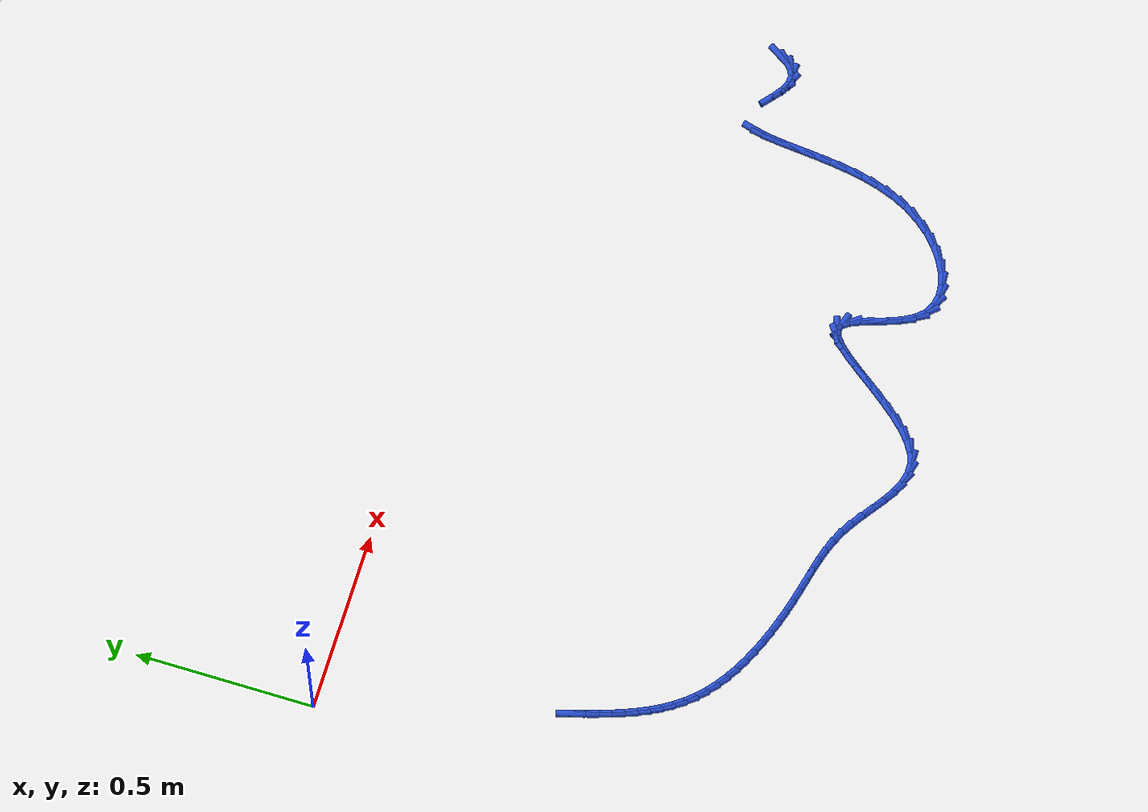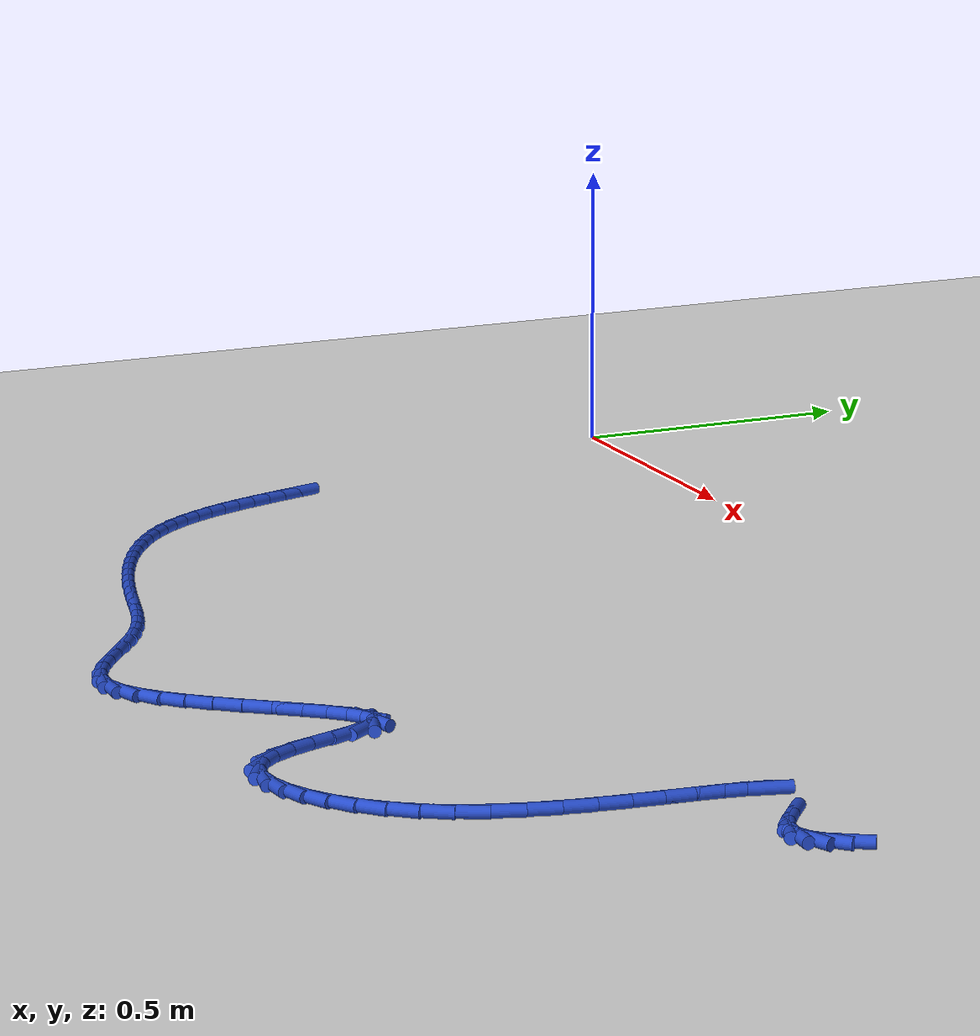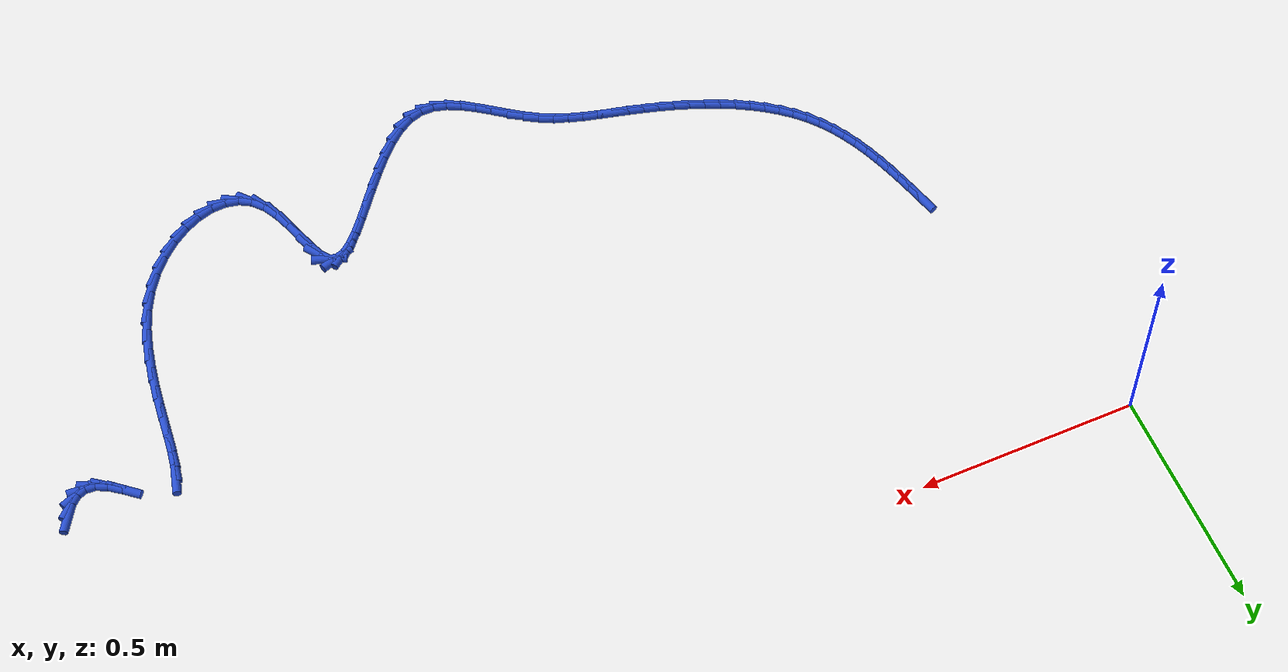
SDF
<sdf version="1.6">
 <world name="default">
  <model name="ground_plane">
   <static>1</static>
   <link name="link">
    <collision name="collision">
     <geometry><plane><normal>0 0 1</normal><size>100 100</size></plane></geometry>
     <surface><friction><ode><mu>100</mu><mu2>50</mu2></ode></friction></surface>
    </collision>
    <visual name="visual">
     <cast_shadows>0</cast_shadows>
     <geometry><plane><normal>0 0 1</normal><size>100 100</size></plane></geometry>
     <material>
      <script><uri>file://media/materials/scripts/gazebo.material</uri><name>Gazebo/WhiteGlow</name></script>
     </material>
    </visual>
   </link>
  </model>
  <model name="line">
   <link name="link_142">
    <pose>2.195262241666391 -0.6656699884543209 0.01 0 1.57 0.9996123819713505</pose>
    <collision name="collision">
     <geometry><cylinder><radius>0.01</radius><length>0.08</length></cylinder></geometry>
    </collision>
    <visual name="visual">
     <material>
      <script><name>Gazebo/Blue</name><uri>file://media/materials/scripts/gazebo.material</uri></script>
     </material>
     <geometry><cylinder><radius>0.01</radius><length>0.08</length></cylinder></geometry>
    </visual>
   </link>
   <link name="link_143">
    <pose>2.179995703602711 -0.6894259541919776 0.01 0 1.57 0.7454430825202889</pose>
    <collision name="collision">
     <geometry><cylinder><radius>0.01</radius><length>0.08</length></cylinder></geometry>
    </collision>
    <visual name="visual">
     <material>
      <script><name>Gazebo/Blue</name><uri>file://media/materials/scripts/gazebo.material</uri></script>
     </material>
     <geometry><cylinder><radius>0.01</radius><length>0.08</length></cylinder></geometry>
    </visual>
   </link>
   <link name="link_144">
    <pose>2.162425744322349 -0.7056451463262414 0.01 0 1.57 0.3678671859137303</pose>
    <collision name="collision">
     <geometry><cylinder><radius>0.01</radius><length>0.08</length></cylinder></geometry>
    </collision>
    <visual name="visual">
     <material>
      <script><name>Gazebo/Blue</name><uri>file://media/materials/scripts/gazebo.material</uri></script>
     </material>
     <geometry><cylinder><radius>0.01</radius><length>0.08</length></cylinder></geometry>
    </visual>
   </link>
   <link name="link_145">
    <pose>2.142365467658728 -0.7133766079670276 0.01 0 1.57 -0.0749435534714723</pose>
    <collision name="collision">
     <geometry><cylinder><radius>0.01</radius><length>0.08</length></cylinder></geometry>
    </collision>
    <visual name="visual">
     <material>
      <script><name>Gazebo/Blue</name><uri>file://media/materials/scripts/gazebo.material</uri></script>
     </material>
     <geometry><cylinder><radius>0.01</radius><length>0.08</length></cylinder></geometry>
    </visual>
   </link>
   <link name="link_146">
    <pose>2.119627977445271 -0.7116693822242518 0.01 0 1.57 -0.4410867007547526</pose>
    <collision name="collision">
     <geometry><cylinder><radius>0.01</radius><length>0.08</length></cylinder></geometry>
    </collision>
    <visual name="visual">
     <material>
      <script><name>Gazebo/Blue</name><uri>file://media/materials/scripts/gazebo.material</uri></script>
     </material>
     <geometry><cylinder><radius>0.01</radius><length>0.08</length></cylinder></geometry>
    </visual>
   </link>
   <link name="link_147">
    <pose>2.094030464380516 -0.6995845721171847 0.01 0 1.57 -0.6470558447896223</pose>
    <collision name="collision">
     <geometry><cylinder><radius>0.01</radius><length>0.08</length></cylinder></geometry>
    </collision>
    <visual name="visual">
     <material>
      <script><name>Gazebo/Blue</name><uri>file://media/materials/scripts/gazebo.material</uri></script>
     </material>
     <geometry><cylinder><radius>0.01</radius><length>0.08</length></cylinder></geometry>
    </visual>
   </link>
   <link name="link_148">
    <pose>2.0661925195732187 -0.6785510799303778 0.01 0 1.57 -0.7006280040195979</pose>
    <collision name="collision">
     <geometry><cylinder><radius>0.01</radius><length>0.08</length></cylinder></geometry>
    </collision>
    <visual name="visual">
     <material>
      <script><name>Gazebo/Blue</name><uri>file://media/materials/scripts/gazebo.material</uri></script>
     </material>
     <geometry><cylinder><radius>0.01</radius><length>0.08</length></cylinder></geometry>
    </visual>
   </link>
   <link name="link_154">
    <pose>1.9552277004159735 -0.6623988405944582 0.01 0 1.57 1.3088488796414934</pose>
    <collision name="collision">
     <geometry><cylinder><radius>0.01</radius><length>0.08</length></cylinder></geometry>
    </collision>
    <visual name="visual">
     <material>
      <script><name>Gazebo/Blue</name><uri>file://media/materials/scripts/gazebo.material</uri></script>
     </material>
     <geometry><cylinder><radius>0.01</radius><length>0.08</length></cylinder></geometry>
    </visual>
   </link>
   <link name="link_155">
    <pose>1.9479905218705675 -0.689392371416023 0.01 0 1.57 1.4017701582260922</pose>
    <collision name="collision">
     <geometry><cylinder><radius>0.01</radius><length>0.08</length></cylinder></geometry>
    </collision>
    <visual name="visual">
     <material>
      <script><name>Gazebo/Blue</name><uri>file://media/materials/scripts/gazebo.material</uri></script>
     </material>
     <geometry><cylinder><radius>0.01</radius><length>0.08</length></cylinder></geometry>
    </visual>
   </link>
   <link name="link_156">
    <pose>1.9423285092088052 -0.7225705992934606 0.01 0 1.57 1.447064710460334</pose>
    <collision name="collision">
     <geometry><cylinder><radius>0.01</radius><length>0.08</length></cylinder></geometry>
    </collision>
    <visual name="visual">
     <material>
      <script><name>Gazebo/Blue</name><uri>file://media/materials/scripts/gazebo.material</uri></script>
     </material>
     <geometry><cylinder><radius>0.01</radius><length>0.08</length></cylinder></geometry>
    </visual>
   </link>
   <link name="link_157">
    <pose>1.937560791746576 -0.7609064931956615 0.01 0 1.57 1.4639603687491611</pose>
    <collision name="collision">
     <geometry><cylinder><radius>0.01</radius><length>0.08</length></cylinder></geometry>
    </collision>
    <visual name="visual">
     <material>
      <script><name>Gazebo/Blue</name><uri>file://media/materials/scripts/gazebo.material</uri></script>
     </material>
     <geometry><cylinder><radius>0.01</radius><length>0.08</length></cylinder></geometry>
    </visual>
   </link>
   <link name="link_158">
    <pose>1.9330064987997695 -0.8033730220915163 0.01 0 1.57 1.4610411363811038</pose>
    <collision name="collision">
     <geometry><cylinder><radius>0.01</radius><length>0.08</length></cylinder></geometry>
    </collision>
    <visual name="visual">
     <material>
      <script><name>Gazebo/Blue</name><uri>file://media/materials/scripts/gazebo.material</uri></script>
     </material>
     <geometry><cylinder><radius>0.01</radius><length>0.08</length></cylinder></geometry>
    </visual>
   </link>
   <link name="link_159">
    <pose>1.927984759684274 -0.8489431549499152 0.01 0 1.57 1.4420170166739577</pose>
    <collision name="collision">
     <geometry><cylinder><radius>0.01</radius><length>0.08</length></cylinder></geometry>
    </collision>
    <visual name="visual">
     <material>
      <script><name>Gazebo/Blue</name><uri>file://media/materials/scripts/gazebo.material</uri></script>
     </material>
     <geometry><cylinder><radius>0.01</radius><length>0.08</length></cylinder></geometry>
    </visual>
   </link>
   <link name="link_160">
    <pose>1.9218147037159796 -0.8965898607397488 0.01 0 1.57 1.4079822253702163</pose>
    <collision name="collision">
     <geometry><cylinder><radius>0.01</radius><length>0.08</length></cylinder></geometry>
    </collision>
    <visual name="visual">
     <material>
      <script><name>Gazebo/Blue</name><uri>file://media/materials/scripts/gazebo.material</uri></script>
     </material>
     <geometry><cylinder><radius>0.01</radius><length>0.08</length></cylinder></geometry>
    </visual>
   </link>
   <link name="link_161">
    <pose>1.9138154602107742 -0.9452861084299073 0.01 0 1.57 1.3583381381681738</pose>
    <collision name="collision">
     <geometry><cylinder><radius>0.01</radius><length>0.08</length></cylinder></geometry>
    </collision>
    <visual name="visual">
     <material>
      <script><name>Gazebo/Blue</name><uri>file://media/materials/scripts/gazebo.material</uri></script>
     </material>
     <geometry><cylinder><radius>0.01</radius><length>0.08</length></cylinder></geometry>
    </visual>
   </link>
   <link name="link_162">
    <pose>1.9033061584845474 -0.9940048669892813 0.01 0 1.57 1.291187489084779</pose>
    <collision name="collision">
     <geometry><cylinder><radius>0.01</radius><length>0.08</length></cylinder></geometry>
    </collision>
    <visual name="visual">
     <material>
      <script><name>Gazebo/Blue</name><uri>file://media/materials/scripts/gazebo.material</uri></script>
     </material>
     <geometry><cylinder><radius>0.01</radius><length>0.08</length></cylinder></geometry>
    </visual>
   </link>
   <link name="link_163">
    <pose>1.8896059278531885 -1.0417191053867612 0.01 0 1.57 1.2035888188326258</pose>
    <collision name="collision">
     <geometry><cylinder><radius>0.01</radius><length>0.08</length></cylinder></geometry>
    </collision>
    <visual name="visual">
     <material>
      <script><name>Gazebo/Blue</name><uri>file://media/materials/scripts/gazebo.material</uri></script>
     </material>
     <geometry><cylinder><radius>0.01</radius><length>0.08</length></cylinder></geometry>
    </visual>
   </link>
   <link name="link_164">
    <pose>1.8720338976325857 -1.087401792591237 0.01 0 1.57 1.0921266399633214</pose>
    <collision name="collision">
     <geometry><cylinder><radius>0.01</radius><length>0.08</length></cylinder></geometry>
    </collision>
    <visual name="visual">
     <material>
      <script><name>Gazebo/Blue</name><uri>file://media/materials/scripts/gazebo.material</uri></script>
     </material>
     <geometry><cylinder><radius>0.01</radius><length>0.08</length></cylinder></geometry>
    </visual>
   </link>
   <link name="link_165">
    <pose>1.8499146860136546 -1.1300271743690185 0.01 0 1.57 0.9652367267636451</pose>
    <collision name="collision">
     <geometry><cylinder><radius>0.01</radius><length>0.08</length></cylinder></geometry>
    </collision>
    <visual name="visual">
     <material>
      <script><name>Gazebo/Blue</name><uri>file://media/materials/scripts/gazebo.material</uri></script>
     </material>
     <geometry><cylinder><radius>0.01</radius><length>0.08</length></cylinder></geometry>
    </visual>
   </link>
   <link name="link_166">
    <pose>1.8231394492648134 -1.1687012820256109 0.01 0 1.57 0.8408640565196475</pose>
    <collision name="collision">
     <geometry><cylinder><radius>0.01</radius><length>0.08</length></cylinder></geometry>
    </collision>
    <visual name="visual">
     <material>
      <script><name>Gazebo/Blue</name><uri>file://media/materials/scripts/gazebo.material</uri></script>
     </material>
     <geometry><cylinder><radius>0.01</radius><length>0.08</length></cylinder></geometry>
    </visual>
   </link>
   <link name="link_167">
    <pose>1.7926506985768051 -1.2027747083193658 0.01 0 1.57 0.7162195679848984</pose>
    <collision name="collision">
     <geometry><cylinder><radius>0.01</radius><length>0.08</length></cylinder></geometry>
    </collision>
    <visual name="visual">
     <material>
      <script><name>Gazebo/Blue</name><uri>file://media/materials/scripts/gazebo.material</uri></script>
     </material>
     <geometry><cylinder><radius>0.01</radius><length>0.08</length></cylinder></geometry>
    </visual>
   </link>
   <link name="link_168">
    <pose>1.7595051772235553 -1.2316246181619868 0.01 0 1.57 0.5848049936562314</pose>
    <collision name="collision">
     <geometry><cylinder><radius>0.01</radius><length>0.08</length></cylinder></geometry>
    </collision>
    <visual name="visual">
     <material>
      <script><name>Gazebo/Blue</name><uri>file://media/materials/scripts/gazebo.material</uri></script>
     </material>
     <geometry><cylinder><radius>0.01</radius><length>0.08</length></cylinder></geometry>
    </visual>
   </link>
   <link name="link_169">
    <pose>1.7247596284789877 -1.2546281764651772 0.01 0 1.57 0.43816767409070534</pose>
    <collision name="collision">
     <geometry><cylinder><radius>0.01</radius><length>0.08</length></cylinder></geometry>
    </collision>
    <visual name="visual">
     <material>
      <script><name>Gazebo/Blue</name><uri>file://media/materials/scripts/gazebo.material</uri></script>
     </material>
     <geometry><cylinder><radius>0.01</radius><length>0.08</length></cylinder></geometry>
    </visual>
   </link>
   <link name="link_170">
    <pose>1.6894707956170278 -1.2711625481406417 0.01 0 1.57 0.26513177540556665</pose>
    <collision name="collision">
     <geometry><cylinder><radius>0.01</radius><length>0.08</length></cylinder></geometry>
    </collision>
    <visual name="visual">
     <material>
      <script><name>Gazebo/Blue</name><uri>file://media/materials/scripts/gazebo.material</uri></script>
     </material>
     <geometry><cylinder><radius>0.01</radius><length>0.08</length></cylinder></geometry>
    </visual>
   </link>
   <link name="link_171">
    <pose>1.6546954219115992 -1.280604898100083 0.01 0 1.57 0.05197796249428365</pose>
    <collision name="collision">
     <geometry><cylinder><radius>0.01</radius><length>0.08</length></cylinder></geometry>
    </collision>
    <visual name="visual">
     <material>
      <script><name>Gazebo/Blue</name><uri>file://media/materials/scripts/gazebo.material</uri></script>
     </material>
     <geometry><cylinder><radius>0.01</radius><length>0.08</length></cylinder></geometry>
    </visual>
   </link>
   <link name="link_172">
    <pose>1.6214902506366276 -1.282332391255206 0.01 0 1.57 -0.21289743742709383</pose>
    <collision name="collision">
     <geometry><cylinder><radius>0.01</radius><length>0.08</length></cylinder></geometry>
    </collision>
    <visual name="visual">
     <material>
      <script><name>Gazebo/Blue</name><uri>file://media/materials/scripts/gazebo.material</uri></script>
     </material>
     <geometry><cylinder><radius>0.01</radius><length>0.08</length></cylinder></geometry>
    </visual>
   </link>
   <link name="link_173">
    <pose>1.5909120250660376 -1.2757221925177133 0.01 0 1.57 -0.5248014675047328</pose>
    <collision name="collision">
     <geometry><cylinder><radius>0.01</radius><length>0.08</length></cylinder></geometry>
    </collision>
    <visual name="visual">
     <material>
      <script><name>Gazebo/Blue</name><uri>file://media/materials/scripts/gazebo.material</uri></script>
     </material>
     <geometry><cylinder><radius>0.01</radius><length>0.08</length></cylinder></geometry>
    </visual>
   </link>
   <link name="link_174">
    <pose>1.5640174884737532 -1.2601514667993101 0.01 0 1.57 -0.8437431753034583</pose>
    <collision name="collision">
     <geometry><cylinder><radius>0.01</radius><length>0.08</length></cylinder></geometry>
    </collision>
    <visual name="visual">
     <material>
      <script><name>Gazebo/Blue</name><uri>file://media/materials/scripts/gazebo.material</uri></script>
     </material>
     <geometry><cylinder><radius>0.01</radius><length>0.08</length></cylinder></geometry>
    </visual>
   </link>
   <link name="link_175">
    <pose>1.5417789115439335 -1.235153756597987 0.01 0 1.57 -1.0707091853753874</pose>
    <collision name="collision">
     <geometry><cylinder><radius>0.01</radius><length>0.08</length></cylinder></geometry>
    </collision>
    <visual name="visual">
     <material>
      <script><name>Gazebo/Blue</name><uri>file://media/materials/scripts/gazebo.material</uri></script>
     </material>
     <geometry><cylinder><radius>0.01</radius><length>0.08</length></cylinder></geometry>
    </visual>
   </link>
   <link name="link_176">
    <pose>1.5239482420625912 -1.2025216940150176 0.01 0 1.57 -1.1931452383965138</pose>
    <collision name="collision">
     <geometry><cylinder><radius>0.01</radius><length>0.08</length></cylinder></geometry>
    </collision>
    <visual name="visual">
     <material>
      <script><name>Gazebo/Blue</name><uri>file://media/materials/scripts/gazebo.material</uri></script>
     </material>
     <geometry><cylinder><radius>0.01</radius><length>0.08</length></cylinder></geometry>
    </visual>
   </link>
   <link name="link_177">
    <pose>1.509359850531284 -1.1657465511646319 0.01 0 1.57 -1.2473068338839473</pose>
    <collision name="collision">
     <geometry><cylinder><radius>0.01</radius><length>0.08</length></cylinder></geometry>
    </collision>
    <visual name="visual">
     <material>
      <script><name>Gazebo/Blue</name><uri>file://media/materials/scripts/gazebo.material</uri></script>
     </material>
     <geometry><cylinder><radius>0.01</radius><length>0.08</length></cylinder></geometry>
    </visual>
   </link>
   <link name="link_178">
    <pose>1.4968257313512998 -1.1283610233086216 0.01 0 1.57 -1.2443495493322714</pose>
    <collision name="collision">
     <geometry><cylinder><radius>0.01</radius><length>0.08</length></cylinder></geometry>
    </collision>
    <visual name="visual">
     <material>
      <script><name>Gazebo/Blue</name><uri>file://media/materials/scripts/gazebo.material</uri></script>
     </material>
     <geometry><cylinder><radius>0.01</radius><length>0.08</length></cylinder></geometry>
    </visual>
   </link>
   <link name="link_179">
    <pose>1.4851578789239266 -1.093897805708778 0.01 0 1.57 -1.1663247400436214</pose>
    <collision name="collision">
     <geometry><cylinder><radius>0.01</radius><length>0.08</length></cylinder></geometry>
    </collision>
    <visual name="visual">
     <material>
      <script><name>Gazebo/Blue</name><uri>file://media/materials/scripts/gazebo.material</uri></script>
     </material>
     <geometry><cylinder><radius>0.01</radius><length>0.08</length></cylinder></geometry>
    </visual>
   </link>
   <link name="link_180">
    <pose>1.4731682876504542 -1.0658895936268935 0.01 0 1.57 -0.9278674675725941</pose>
    <collision name="collision">
     <geometry><cylinder><radius>0.01</radius><length>0.08</length></cylinder></geometry>
    </collision>
    <visual name="visual">
     <material>
      <script><name>Gazebo/Blue</name><uri>file://media/materials/scripts/gazebo.material</uri></script>
     </material>
     <geometry><cylinder><radius>0.01</radius><length>0.08</length></cylinder></geometry>
    </visual>
   </link>
   <link name="link_181">
    <pose>1.4596689669649754 -1.0478690247130005 0.01 0 1.57 -0.3329556566196396</pose>
    <collision name="collision">
     <geometry><cylinder><radius>0.01</radius><length>0.08</length></cylinder></geometry>
    </collision>
    <visual name="visual">
     <material>
      <script><name>Gazebo/Blue</name><uri>file://media/materials/scripts/gazebo.material</uri></script>
     </material>
     <geometry><cylinder><radius>0.01</radius><length>0.08</length></cylinder></geometry>
    </visual>
   </link>
   <link name="link_182">
    <pose>1.4437354695453442 -1.0423587329779336 0.01 0 1.57 0.3129008909267098</pose>
    <collision name="collision">
     <geometry><cylinder><radius>0.01</radius><length>0.08</length></cylinder></geometry>
    </collision>
    <visual name="visual">
     <material>
      <script><name>Gazebo/Blue</name><uri>file://media/materials/scripts/gazebo.material</uri></script>
     </material>
     <geometry><cylinder><radius>0.01</radius><length>0.08</length></cylinder></geometry>
    </visual>
   </link>
   <link name="link_183">
    <pose>1.4253784226685473 -1.0482977707228056 0.01 0 1.57 0.6469466118176089</pose>
    <collision name="collision">
     <geometry><cylinder><radius>0.01</radius><length>0.08</length></cylinder></geometry>
    </collision>
    <visual name="visual">
     <material>
      <script><name>Gazebo/Blue</name><uri>file://media/materials/scripts/gazebo.material</uri></script>
     </material>
     <geometry><cylinder><radius>0.01</radius><length>0.08</length></cylinder></geometry>
    </visual>
   </link>
   <link name="link_184">
    <pose>1.4048157446448821 -1.0638307676900938 0.01 0 1.57 0.8011359289901847</pose>
    <collision name="collision">
     <geometry><cylinder><radius>0.01</radius><length>0.08</length></cylinder></geometry>
    </collision>
    <visual name="visual">
     <material>
      <script><name>Gazebo/Blue</name><uri>file://media/materials/scripts/gazebo.material</uri></script>
     </material>
     <geometry><cylinder><radius>0.01</radius><length>0.08</length></cylinder></geometry>
    </visual>
   </link>
   <link name="link_185">
    <pose>1.3822653537846459 -1.087102353622276 0.01 0 1.57 0.8755620156915359</pose>
    <collision name="collision">
     <geometry><cylinder><radius>0.01</radius><length>0.08</length></cylinder></geometry>
    </collision>
    <visual name="visual">
     <material>
      <script><name>Gazebo/Blue</name><uri>file://media/materials/scripts/gazebo.material</uri></script>
     </material>
     <geometry><cylinder><radius>0.01</radius><length>0.08</length></cylinder></geometry>
    </visual>
   </link>
   <link name="link_186">
    <pose>1.357945168398136 -1.1162571582618293 0.01 0 1.57 0.9085650713628531</pose>
    <collision name="collision">
     <geometry><cylinder><radius>0.01</radius><length>0.08</length></cylinder></geometry>
    </collision>
    <visual name="visual">
     <material>
      <script><name>Gazebo/Blue</name><uri>file://media/materials/scripts/gazebo.material</uri></script>
     </material>
     <geometry><cylinder><radius>0.01</radius><length>0.08</length></cylinder></geometry>
    </visual>
   </link>
   <link name="link_187">
    <pose>1.3320731067956495 -1.1494398113512314 0.01 0 1.57 0.9149272075986344</pose>
    <collision name="collision">
     <geometry><cylinder><radius>0.01</radius><length>0.08</length></cylinder></geometry>
    </collision>
    <visual name="visual">
     <material>
      <script><name>Gazebo/Blue</name><uri>file://media/materials/scripts/gazebo.material</uri></script>
     </material>
     <geometry><cylinder><radius>0.01</radius><length>0.08</length></cylinder></geometry>
    </visual>
   </link>
   <link name="link_188">
    <pose>1.304867087287484 -1.1847949426329605 0.01 0 1.57 0.8997538537263806</pose>
    <collision name="collision">
     <geometry><cylinder><radius>0.01</radius><length>0.08</length></cylinder></geometry>
    </collision>
    <visual name="visual">
     <material>
      <script><name>Gazebo/Blue</name><uri>file://media/materials/scripts/gazebo.material</uri></script>
     </material>
     <geometry><cylinder><radius>0.01</radius><length>0.08</length></cylinder></geometry>
    </visual>
   </link>
   <link name="link_189">
    <pose>1.2765450281839368 -1.2204671818494937 0.01 0 1.57 0.8628039543716065</pose>
    <collision name="collision">
     <geometry><cylinder><radius>0.01</radius><length>0.08</length></cylinder></geometry>
    </collision>
    <visual name="visual">
     <material>
      <script><name>Gazebo/Blue</name><uri>file://media/materials/scripts/gazebo.material</uri></script>
     </material>
     <geometry><cylinder><radius>0.01</radius><length>0.08</length></cylinder></geometry>
    </visual>
   </link>
   <link name="link_190">
    <pose>1.2473248477953054 -1.2546011587433088 0.01 0 1.57 0.7992487102097757</pose>
    <collision name="collision">
     <geometry><cylinder><radius>0.01</radius><length>0.08</length></cylinder></geometry>
    </collision>
    <visual name="visual">
     <material>
      <script><name>Gazebo/Blue</name><uri>file://media/materials/scripts/gazebo.material</uri></script>
     </material>
     <geometry><cylinder><radius>0.01</radius><length>0.08</length></cylinder></geometry>
    </visual>
   </link>
   <link name="link_191">
    <pose>1.2174244644318863 -1.2853415030568827 0.01 0 1.57 0.6984029523716959</pose>
    <collision name="collision">
     <geometry><cylinder><radius>0.01</radius><length>0.08</length></cylinder></geometry>
    </collision>
    <visual name="visual">
     <material>
      <script><name>Gazebo/Blue</name><uri>file://media/materials/scripts/gazebo.material</uri></script>
     </material>
     <geometry><cylinder><radius>0.01</radius><length>0.08</length></cylinder></geometry>
    </visual>
   </link>
   <link name="link_192">
    <pose>1.1870617964039778 -1.3108328445326936 0.01 0 1.57 0.5409658061694312</pose>
    <collision name="collision">
     <geometry><cylinder><radius>0.01</radius><length>0.08</length></cylinder></geometry>
    </collision>
    <visual name="visual">
     <material>
      <script><name>Gazebo/Blue</name><uri>file://media/materials/scripts/gazebo.material</uri></script>
     </material>
     <geometry><cylinder><radius>0.01</radius><length>0.08</length></cylinder></geometry>
    </visual>
   </link>
   <link name="link_193">
    <pose>1.156454762021877 -1.3292198129132191 0.01 0 1.57 0.2988439352659974</pose>
    <collision name="collision">
     <geometry><cylinder><radius>0.01</radius><length>0.08</length></cylinder></geometry>
    </collision>
    <visual name="visual">
     <material>
      <script><name>Gazebo/Blue</name><uri>file://media/materials/scripts/gazebo.material</uri></script>
     </material>
     <geometry><cylinder><radius>0.01</radius><length>0.08</length></cylinder></geometry>
    </visual>
   </link>
   <link name="link_194">
    <pose>1.1258205176257567 -1.3386573050301476 0.01 0 1.57 -0.006158942326616484</pose>
    <collision name="collision">
     <geometry><cylinder><radius>0.01</radius><length>0.08</length></cylinder></geometry>
    </collision>
    <visual name="visual">
     <material>
      <script><name>Gazebo/Blue</name><uri>file://media/materials/scripts/gazebo.material</uri></script>
     </material>
     <geometry><cylinder><radius>0.01</radius><length>0.08</length></cylinder></geometry>
    </visual>
   </link>
   <link name="link_195">
    <pose>1.095289459030233 -1.3384692636234499 0.01 0 1.57 -0.2647061144779179</pose>
    <collision name="collision">
     <geometry><cylinder><radius>0.01</radius><length>0.08</length></cylinder></geometry>
    </collision>
    <visual name="visual">
     <material>
      <script><name>Gazebo/Blue</name><uri>file://media/materials/scripts/gazebo.material</uri></script>
     </material>
     <geometry><cylinder><radius>0.01</radius><length>0.08</length></cylinder></geometry>
    </visual>
   </link>
   <link name="link_196">
    <pose>1.064826328550952 -1.3302117127156643 0.01 0 1.57 -0.4449622292759995</pose>
    <collision name="collision">
     <geometry><cylinder><radius>0.01</radius><length>0.08</length></cylinder></geometry>
    </collision>
    <visual name="visual">
     <material>
      <script><name>Gazebo/Blue</name><uri>file://media/materials/scripts/gazebo.material</uri></script>
     </material>
     <geometry><cylinder><radius>0.01</radius><length>0.08</length></cylinder></geometry>
    </visual>
   </link>
   <link name="link_197">
    <pose>1.0343772275619885 -1.3156918518072382 0.01 0 1.57 -0.5566952301761783</pose>
    <collision name="collision">
     <geometry><cylinder><radius>0.01</radius><length>0.08</length></cylinder></geometry>
    </collision>
    <visual name="visual">
     <material>
      <script><name>Gazebo/Blue</name><uri>file://media/materials/scripts/gazebo.material</uri></script>
     </material>
     <geometry><cylinder><radius>0.01</radius><length>0.08</length></cylinder></geometry>
    </visual>
   </link>
   <link name="link_198">
    <pose>1.003888257437418 -1.2967168803986198 0.01 0 1.57 -0.6154278487967002</pose>
    <collision name="collision">
     <geometry><cylinder><radius>0.01</radius><length>0.08</length></cylinder></geometry>
    </collision>
    <visual name="visual">
     <material>
      <script><name>Gazebo/Blue</name><uri>file://media/materials/scripts/gazebo.material</uri></script>
     </material>
     <geometry><cylinder><radius>0.01</radius><length>0.08</length></cylinder></geometry>
    </visual>
   </link>
   <link name="link_199">
    <pose>0.9733055195513147 -1.2750939979902565 0.01 0 1.57 -0.631222771851358</pose>
    <collision name="collision">
     <geometry><cylinder><radius>0.01</radius><length>0.08</length></cylinder></geometry>
    </collision>
    <visual name="visual">
     <material>
      <script><name>Gazebo/Blue</name><uri>file://media/materials/scripts/gazebo.material</uri></script>
     </material>
     <geometry><cylinder><radius>0.01</radius><length>0.08</length></cylinder></geometry>
    </visual>
   </link>
   <link name="link_200">
    <pose>0.9425751152777542 -1.2526304040825962 0.01 0 1.57 -0.6073490136458245</pose>
    <collision name="collision">
     <geometry><cylinder><radius>0.01</radius><length>0.08</length></cylinder></geometry>
    </collision>
    <visual name="visual">
     <material>
      <script><name>Gazebo/Blue</name><uri>file://media/materials/scripts/gazebo.material</uri></script>
     </material>
     <geometry><cylinder><radius>0.01</radius><length>0.08</length></cylinder></geometry>
    </visual>
   </link>
   <link name="link_201">
    <pose>0.9116431459908113 -1.231133298176087 0.01 0 1.57 -0.5413512757010174</pose>
    <collision name="collision">
     <geometry><cylinder><radius>0.01</radius><length>0.08</length></cylinder></geometry>
    </collision>
    <visual name="visual">
     <material>
      <script><name>Gazebo/Blue</name><uri>file://media/materials/scripts/gazebo.material</uri></script>
     </material>
     <geometry><cylinder><radius>0.01</radius><length>0.08</length></cylinder></geometry>
    </visual>
   </link>
   <link name="link_202">
    <pose>0.8804561146817279 -1.2123815366112491 0.01 0 1.57 -0.4520830624222318</pose>
    <collision name="collision">
     <geometry><cylinder><radius>0.01</radius><length>0.08</length></cylinder></geometry>
    </collision>
    <visual name="visual">
     <material>
      <script><name>Gazebo/Blue</name><uri>file://media/materials/scripts/gazebo.material</uri></script>
     </material>
     <geometry><cylinder><radius>0.01</radius><length>0.08</length></cylinder></geometry>
    </visual>
   </link>
   <link name="link_203">
    <pose>0.848975547819843 -1.1970937301087032 0.01 0 1.57 -0.3734800362205828</pose>
    <collision name="collision">
     <geometry><cylinder><radius>0.01</radius><length>0.08</length></cylinder></geometry>
    </collision>
    <visual name="visual">
     <material>
      <script><name>Gazebo/Blue</name><uri>file://media/materials/scripts/gazebo.material</uri></script>
     </material>
     <geometry><cylinder><radius>0.01</radius><length>0.08</length></cylinder></geometry>
    </visual>
   </link>
   <link name="link_204">
    <pose>0.8171821536183018 -1.184634784226786 0.01 0 1.57 -0.31177845962542</pose>
    <collision name="collision">
     <geometry><cylinder><radius>0.01</radius><length>0.08</length></cylinder></geometry>
    </collision>
    <visual name="visual">
     <material>
      <script><name>Gazebo/Blue</name><uri>file://media/materials/scripts/gazebo.material</uri></script>
     </material>
     <geometry><cylinder><radius>0.01</radius><length>0.08</length></cylinder></geometry>
    </visual>
   </link>
   <link name="link_205">
    <pose>0.7850578891567792 -1.1742814687901153 0.01 0 1.57 -0.2695336719085614</pose>
    <collision name="collision">
     <geometry><cylinder><radius>0.01</radius><length>0.08</length></cylinder></geometry>
    </collision>
    <visual name="visual">
     <material>
      <script><name>Gazebo/Blue</name><uri>file://media/materials/scripts/gazebo.material</uri></script>
     </material>
     <geometry><cylinder><radius>0.01</radius><length>0.08</length></cylinder></geometry>
    </visual>
   </link>
   <link name="link_206">
    <pose>0.7525847115149478 -1.165310553623306 0.01 0 1.57 -0.24789152025265265</pose>
    <collision name="collision">
     <geometry><cylinder><radius>0.01</radius><length>0.08</length></cylinder></geometry>
    </collision>
    <visual name="visual">
     <material>
      <script><name>Gazebo/Blue</name><uri>file://media/materials/scripts/gazebo.material</uri></script>
     </material>
     <geometry><cylinder><radius>0.01</radius><length>0.08</length></cylinder></geometry>
    </visual>
   </link>
   <link name="link_207">
    <pose>0.719744577772481 -1.1569988085509746 0.01 0 1.57 -0.24694705711152445</pose>
    <collision name="collision">
     <geometry><cylinder><radius>0.01</radius><length>0.08</length></cylinder></geometry>
    </collision>
    <visual name="visual">
     <material>
      <script><name>Gazebo/Blue</name><uri>file://media/materials/scripts/gazebo.material</uri></script>
     </material>
     <geometry><cylinder><radius>0.01</radius><length>0.08</length></cylinder></geometry>
    </visual>
   </link>
   <link name="link_208">
    <pose>0.6865194450090525 -1.148623003397737 0.01 0 1.57 -0.26347444160733596</pose>
    <collision name="collision">
     <geometry><cylinder><radius>0.01</radius><length>0.08</length></cylinder></geometry>
    </collision>
    <visual name="visual">
     <material>
      <script><name>Gazebo/Blue</name><uri>file://media/materials/scripts/gazebo.material</uri></script>
     </material>
     <geometry><cylinder><radius>0.01</radius><length>0.08</length></cylinder></geometry>
    </visual>
   </link>
   <link name="link_209">
    <pose>0.6529295453702322 -1.1395622852540201 0.01 0 1.57 -0.28617714956694534</pose>
    <collision name="collision">
     <geometry><cylinder><radius>0.01</radius><length>0.08</length></cylinder></geometry>
    </collision>
    <visual name="visual">
     <material>
      <script><name>Gazebo/Blue</name><uri>file://media/materials/scripts/gazebo.material</uri></script>
     </material>
     <geometry><cylinder><radius>0.01</radius><length>0.08</length></cylinder></geometry>
    </visual>
   </link>
   <link name="link_210">
    <pose>0.6191552157680055 -1.129624045756548 0.01 0 1.57 -0.3124085138146949</pose>
    <collision name="collision">
     <geometry><cylinder><radius>0.01</radius><length>0.08</length></cylinder></geometry>
    </collision>
    <visual name="visual">
     <material>
      <script><name>Gazebo/Blue</name><uri>file://media/materials/scripts/gazebo.material</uri></script>
     </material>
     <geometry><cylinder><radius>0.01</radius><length>0.08</length></cylinder></geometry>
    </visual>
   </link>
   <link name="link_211">
    <pose>0.5854186498101001 -1.118727633868976 0.01 0 1.57 -0.34247552719867674</pose>
    <collision name="collision">
     <geometry><cylinder><radius>0.01</radius><length>0.08</length></cylinder></geometry>
    </collision>
    <visual name="visual">
     <material>
      <script><name>Gazebo/Blue</name><uri>file://media/materials/scripts/gazebo.material</uri></script>
     </material>
     <geometry><cylinder><radius>0.01</radius><length>0.08</length></cylinder></geometry>
    </visual>
   </link>
   <link name="link_212">
    <pose>0.5519420412369556 -1.1067923989099335 0.01 0 1.57 -0.37676259643208326</pose>
    <collision name="collision">
     <geometry><cylinder><radius>0.01</radius><length>0.08</length></cylinder></geometry>
    </collision>
    <visual name="visual">
     <material>
      <script><name>Gazebo/Blue</name><uri>file://media/materials/scripts/gazebo.material</uri></script>
     </material>
     <geometry><cylinder><radius>0.01</radius><length>0.08</length></cylinder></geometry>
    </visual>
   </link>
   <link name="link_213">
    <pose>0.5189475837890104 -1.093737690198049 0.01 0 1.57 -0.41573044425696026</pose>
    <collision name="collision">
     <geometry><cylinder><radius>0.01</radius><length>0.08</length></cylinder></geometry>
    </collision>
    <visual name="visual">
     <material>
      <script><name>Gazebo/Blue</name><uri>file://media/materials/scripts/gazebo.material</uri></script>
     </material>
     <geometry><cylinder><radius>0.01</radius><length>0.08</length></cylinder></geometry>
    </visual>
   </link>
   <link name="link_214">
    <pose>0.48665747120670394 -1.0794828570519521 0.01 0 1.57 -0.4599120378669697</pose>
    <collision name="collision">
     <geometry><cylinder><radius>0.01</radius><length>0.08</length></cylinder></geometry>
    </collision>
    <visual name="visual">
     <material>
      <script><name>Gazebo/Blue</name><uri>file://media/materials/scripts/gazebo.material</uri></script>
     </material>
     <geometry><cylinder><radius>0.01</radius><length>0.08</length></cylinder></geometry>
    </visual>
   </link>
   <link name="link_215">
    <pose>0.45529389723047525 -1.0639472487902724 0.01 0 1.57 -0.5099016559560824</pose>
    <collision name="collision">
     <geometry><cylinder><radius>0.01</radius><length>0.08</length></cylinder></geometry>
    </collision>
    <visual name="visual">
     <material>
      <script><name>Gazebo/Blue</name><uri>file://media/materials/scripts/gazebo.material</uri></script>
     </material>
     <geometry><cylinder><radius>0.01</radius><length>0.08</length></cylinder></geometry>
    </visual>
   </link>
   <link name="link_216">
    <pose>0.4250790556007635 -1.0470502147316387 0.01 0 1.57 -0.5663316181474254</pose>
    <collision name="collision">
     <geometry><cylinder><radius>0.01</radius><length>0.08</length></cylinder></geometry>
    </collision>
    <visual name="visual">
     <material>
      <script><name>Gazebo/Blue</name><uri>file://media/materials/scripts/gazebo.material</uri></script>
     </material>
     <geometry><cylinder><radius>0.01</radius><length>0.08</length></cylinder></geometry>
    </visual>
   </link>
   <link name="link_217">
    <pose>0.3962351400580075 -1.0287111041946801 0.01 0 1.57 -0.6298294166952229</pose>
    <collision name="collision">
     <geometry><cylinder><radius>0.01</radius><length>0.08</length></cylinder></geometry>
    </collision>
    <visual name="visual">
     <material>
      <script><name>Gazebo/Blue</name><uri>file://media/materials/scripts/gazebo.material</uri></script>
     </material>
     <geometry><cylinder><radius>0.01</radius><length>0.08</length></cylinder></geometry>
    </visual>
   </link>
   <link name="link_218">
    <pose>0.3689843443426462 -1.0088492664980262 0.01 0 1.57 -0.7009468941208616</pose>
    <collision name="collision">
     <geometry><cylinder><radius>0.01</radius><length>0.08</length></cylinder></geometry>
    </collision>
    <visual name="visual">
     <material>
      <script><name>Gazebo/Blue</name><uri>file://media/materials/scripts/gazebo.material</uri></script>
     </material>
     <geometry><cylinder><radius>0.01</radius><length>0.08</length></cylinder></geometry>
    </visual>
   </link>
   <link name="link_219">
    <pose>0.3435488621951188 -0.9873840509603056 0.01 0 1.57 -0.7800545914811462</pose>
    <collision name="collision">
     <geometry><cylinder><radius>0.01</radius><length>0.08</length></cylinder></geometry>
    </collision>
    <visual name="visual">
     <material>
      <script><name>Gazebo/Blue</name><uri>file://media/materials/scripts/gazebo.material</uri></script>
     </material>
     <geometry><cylinder><radius>0.01</radius><length>0.08</length></cylinder></geometry>
    </visual>
   </link>
   <link name="link_220">
    <pose>0.32015088735586444 -0.9642348069001483 0.01 0 1.57 -0.8661592423573459</pose>
    <collision name="collision">
     <geometry><cylinder><radius>0.01</radius><length>0.08</length></cylinder></geometry>
    </collision>
    <visual name="visual">
     <material>
      <script><name>Gazebo/Blue</name><uri>file://media/materials/scripts/gazebo.material</uri></script>
     </material>
     <geometry><cylinder><radius>0.01</radius><length>0.08</length></cylinder></geometry>
    </visual>
   </link>
   <link name="link_221">
    <pose>0.29898222150290177 -0.9393377108405451 0.01 0 1.57 -0.9493549497355563</pose>
    <collision name="collision">
     <geometry><cylinder><radius>0.01</radius><length>0.08</length></cylinder></geometry>
    </collision>
    <visual name="visual">
     <material>
      <script><name>Gazebo/Blue</name><uri>file://media/materials/scripts/gazebo.material</uri></script>
     </material>
     <geometry><cylinder><radius>0.01</radius><length>0.08</length></cylinder></geometry>
    </visual>
   </link>
   <link name="link_222">
    <pose>0.279963802151505 -0.9127789089432021 0.01 0 1.57 -1.0236929580023892</pose>
    <collision name="collision">
     <geometry><cylinder><radius>0.01</radius><length>0.08</length></cylinder></geometry>
    </collision>
    <visual name="visual">
     <material>
      <script><name>Gazebo/Blue</name><uri>file://media/materials/scripts/gazebo.material</uri></script>
     </material>
     <geometry><cylinder><radius>0.01</radius><length>0.08</length></cylinder></geometry>
    </visual>
   </link>
   <link name="link_223">
    <pose>0.2628743664616471 -0.8847232795863487 0.01 0 1.57 -1.0885542076754204</pose>
    <collision name="collision">
     <geometry><cylinder><radius>0.01</radius><length>0.08</length></cylinder></geometry>
    </collision>
    <visual name="visual">
     <material>
      <script><name>Gazebo/Blue</name><uri>file://media/materials/scripts/gazebo.material</uri></script>
     </material>
     <geometry><cylinder><radius>0.01</radius><length>0.08</length></cylinder></geometry>
    </visual>
   </link>
   <link name="link_224">
    <pose>0.2474913922949303 -0.8553363983852339 0.01 0 1.57 -1.1438566941726467</pose>
    <collision name="collision">
     <geometry><cylinder><radius>0.01</radius><length>0.08</length></cylinder></geometry>
    </collision>
    <visual name="visual">
     <material>
      <script><name>Gazebo/Blue</name><uri>file://media/materials/scripts/gazebo.material</uri></script>
     </material>
     <geometry><cylinder><radius>0.01</radius><length>0.08</length></cylinder></geometry>
    </visual>
   </link>
   <link name="link_225">
    <pose>0.23359235751295696 -0.8247838409551068 0.01 0 1.57 -1.1898377411401835</pose>
    <collision name="collision">
     <geometry><cylinder><radius>0.01</radius><length>0.08</length></cylinder></geometry>
    </collision>
    <visual name="visual">
     <material>
      <script><name>Gazebo/Blue</name><uri>file://media/materials/scripts/gazebo.material</uri></script>
     </material>
     <geometry><cylinder><radius>0.01</radius><length>0.08</length></cylinder></geometry>
    </visual>
   </link>
   <link name="link_226">
    <pose>0.22095473997732937 -0.7932311829112165 0.01 0 1.57 -1.226899906329021</pose>
    <collision name="collision">
     <geometry><cylinder><radius>0.01</radius><length>0.08</length></cylinder></geometry>
    </collision>
    <visual name="visual">
     <material>
      <script><name>Gazebo/Blue</name><uri>file://media/materials/scripts/gazebo.material</uri></script>
     </material>
     <geometry><cylinder><radius>0.01</radius><length>0.08</length></cylinder></geometry>
    </visual>
   </link>
   <link name="link_227">
    <pose>0.2093560175496499 -0.7608439998688121 0.01 0 1.57 -1.2554947892724846</pose>
    <collision name="collision">
     <geometry><cylinder><radius>0.01</radius><length>0.08</length></cylinder></geometry>
    </collision>
    <visual name="visual">
     <material>
      <script><name>Gazebo/Blue</name><uri>file://media/materials/scripts/gazebo.material</uri></script>
     </material>
     <geometry><cylinder><radius>0.01</radius><length>0.08</length></cylinder></geometry>
    </visual>
   </link>
   <link name="link_228">
    <pose>0.19857366809152088 -0.727787867443143 0.01 0 1.57 -1.2760446298569275</pose>
    <collision name="collision">
     <geometry><cylinder><radius>0.01</radius><length>0.08</length></cylinder></geometry>
    </collision>
    <visual name="visual">
     <material>
      <script><name>Gazebo/Blue</name><uri>file://media/materials/scripts/gazebo.material</uri></script>
     </material>
     <geometry><cylinder><radius>0.01</radius><length>0.08</length></cylinder></geometry>
    </visual>
   </link>
   <link name="link_229">
    <pose>0.18838516946454464 -0.6942283612494581 0.01 0 1.57 -1.2888940165318339</pose>
    <collision name="collision">
     <geometry><cylinder><radius>0.01</radius><length>0.08</length></cylinder></geometry>
    </collision>
    <visual name="visual">
     <material>
      <script><name>Gazebo/Blue</name><uri>file://media/materials/scripts/gazebo.material</uri></script>
     </material>
     <geometry><cylinder><radius>0.01</radius><length>0.08</length></cylinder></geometry>
    </visual>
   </link>
   <link name="link_230">
    <pose>0.1785679995303235 -0.6603310569030065 0.01 0 1.57 -1.2942828112991418</pose>
    <collision name="collision">
     <geometry><cylinder><radius>0.01</radius><length>0.08</length></cylinder></geometry>
    </collision>
    <visual name="visual">
     <material>
      <script><name>Gazebo/Blue</name><uri>file://media/materials/scripts/gazebo.material</uri></script>
     </material>
     <geometry><cylinder><radius>0.01</radius><length>0.08</length></cylinder></geometry>
    </visual>
   </link>
  </model>
 </world>
</sdf>
